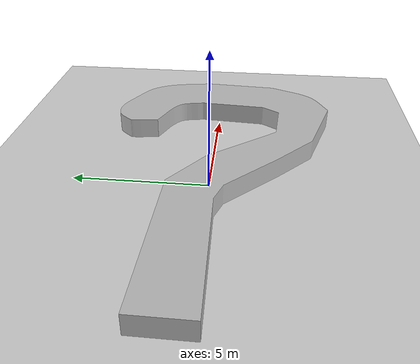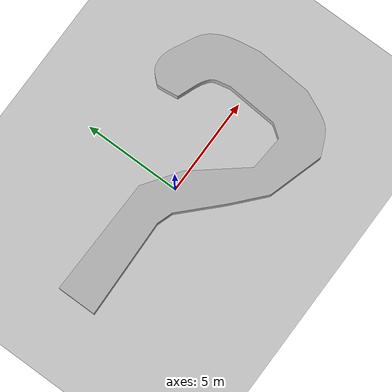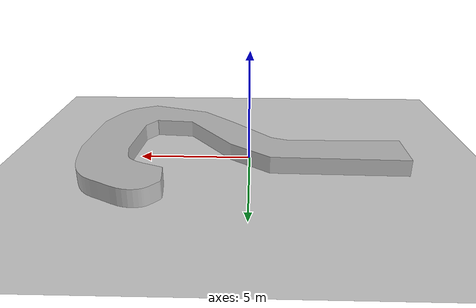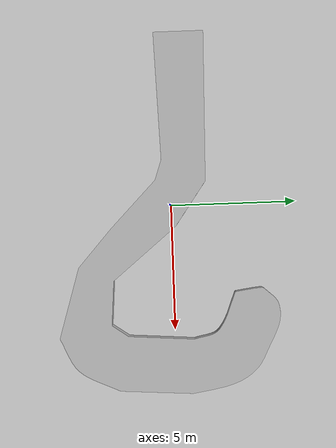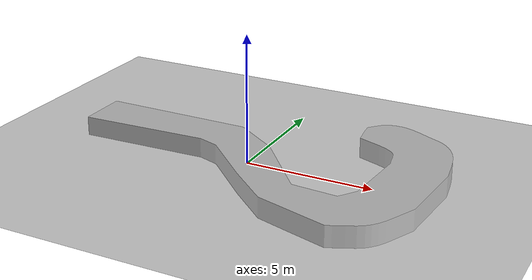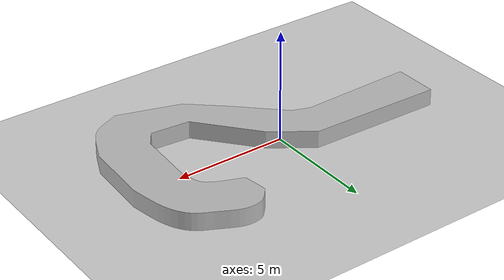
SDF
<?xml version="1.0"?>
<sdf version="1.4">
  <world name="Default">

    <include>
      <uri>model://ground_plane</uri>
    </include>
    <include>
      <uri>model://sun</uri>
    </include>

    <model name="question_mark">
      <pose>7.5 5 0  1.575 0 -1.57</pose>
      <static>true</static>
      <link name="question_link">
        <collision name="collision">
          <geometry>
            <mesh><uri>file:///home/ride/catkin_ws/src/mp23/worlds/meshes/map.STL</uri></mesh>
            <!--CHANGE THIS PATH WITH YOURS -->
          </geometry>
        </collision>
        <visual name="visual">
          <geometry>
            <mesh>
              <uri>file:///home/ride/catkin_ws/src/mp23/worlds/meshes/map.STL</uri>
              <!--CHANGE THIS PATH WITH YOURS -->
            </mesh>
          </geometry>
        </visual>
      </link>
    </model>

  </world>
</sdf>
